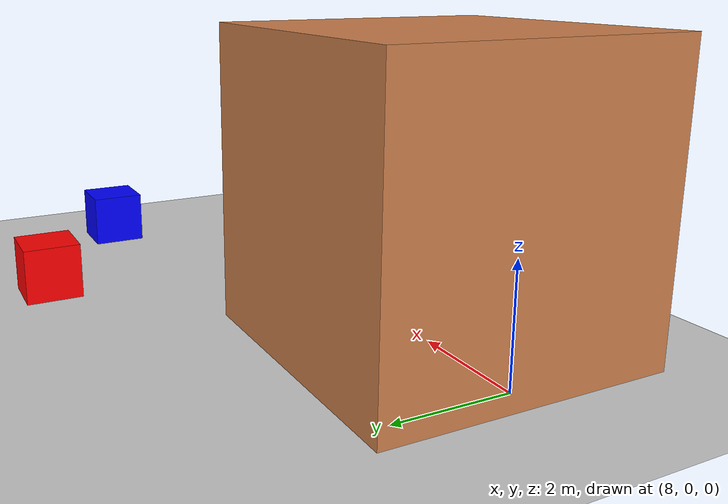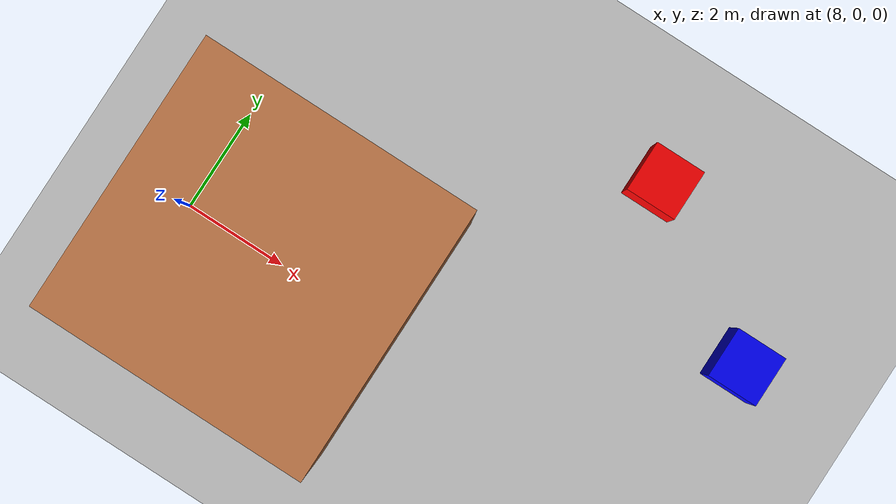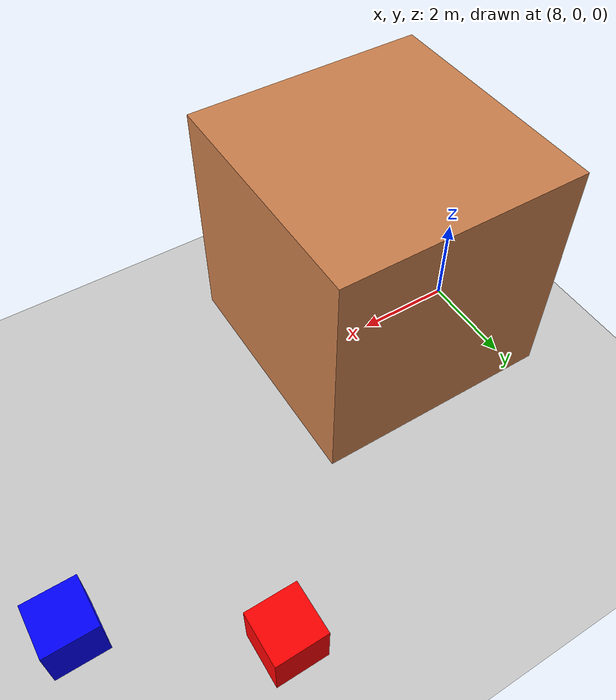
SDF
<!-- Tools/simulation/gazebo-classic/sitl_gazebo-classic/worlds/house_with_obstacles.world -->
<?xml version="1.0" ?>
<sdf version="1.5">
  <world name="default">

    <!-- Global light -->
    <include>
      <uri>model://sun</uri>
    </include>

    <!-- Ground -->
    <include>
      <uri>model://ground_plane</uri>
    </include>

    <!-- Asphalt plane -->
    <include>
      <uri>model://asphalt_plane</uri>
    </include>

    <!-- Small house -->
    <model name="house">
      <pose>10 0 2.5 0 0 0</pose>
      <link name="link">
        <collision name="collision">
          <geometry>
            <box><size>5 5 5</size></box>
          </geometry>
        </collision>
        <visual name="visual">
          <geometry>
            <box><size>5 5 5</size></box>
          </geometry>
          <material>
            <ambient>0.8 0.5 0.3 1</ambient>
            <diffuse>0.8 0.5 0.3 1</diffuse>
          </material>
        </visual>
      </link>
    </model>

    <!-- Obstacle 1 -->
    <model name="obstacle1">
      <pose>15 5 0.5 0 0 0</pose>
      <link name="link">
        <collision name="collision">
          <geometry>
            <box><size>1 1 1</size></box>
          </geometry>
        </collision>
        <visual name="visual">
          <geometry>
            <box><size>1 1 1</size></box>
          </geometry>
          <material>
            <ambient>1 0 0 1</ambient>
            <diffuse>1 0 0 1</diffuse>
          </material>
        </visual>
      </link>
    </model>

    <!-- Obstacle 2 -->
    <model name="obstacle2">
      <pose>18 3 0.5 0 0 0</pose>
      <link name="link">
        <collision name="collision">
          <geometry>
            <box><size>1 1 1</size></box>
          </geometry>
        </collision>
        <visual name="visual">
          <geometry>
            <box><size>1 1 1</size></box>
          </geometry>
          <material>
            <ambient>0 0 1 1</ambient>
            <diffuse>0 0 1 1</diffuse>
          </material>
        </visual>
      </link>
    </model>

    <!-- ROS2 plugin: publish model states -->
    <plugin name="gazebo_ros_state" filename="libgazebo_ros_state.so">
      <ros>
        <namespace>/</namespace>
        <argument>gazebo</argument>
      </ros>
    </plugin>

    <!-- Physics -->
    <physics name="default_physics" default="0" type="ode">
      <gravity>0 0 -9.8066</gravity>
      <ode>
        <solver>
          <type>quick</type>
          <iters>10</iters>
          <sor>1.3</sor>
        </solver>
        <constraints>
          <cfm>0</cfm>
          <erp>0.2</erp>
          <contact_max_correcting_vel>100</contact_max_correcting_vel>
          <contact_surface_layer>0.001</contact_surface_layer>
        </constraints>
      </ode>
      <max_step_size>0.004</max_step_size>
      <real_time_factor>1</real_time_factor>
      <real_time_update_rate>250</real_time_update_rate>
      <magnetic_field>6.0e-6 2.3e-5 -4.2e-5</magnetic_field>
    </physics>

  </world>
</sdf>
